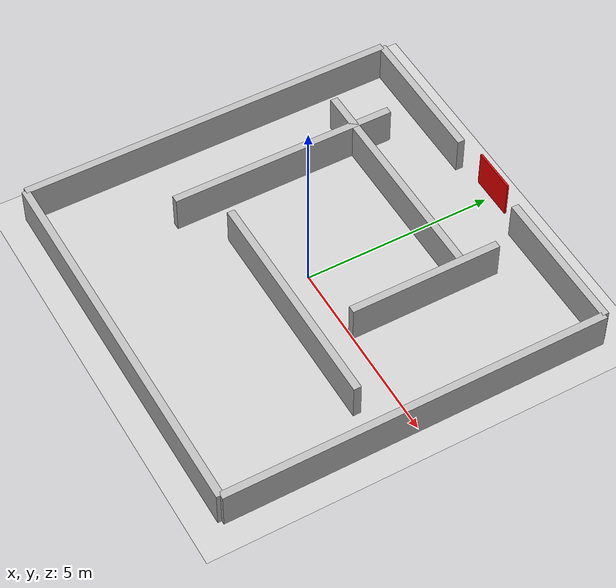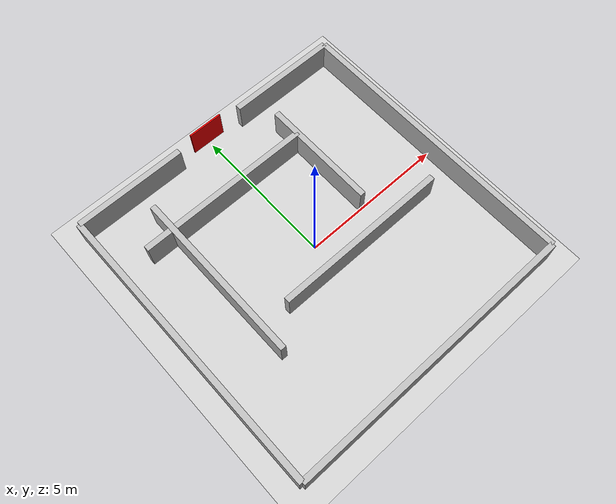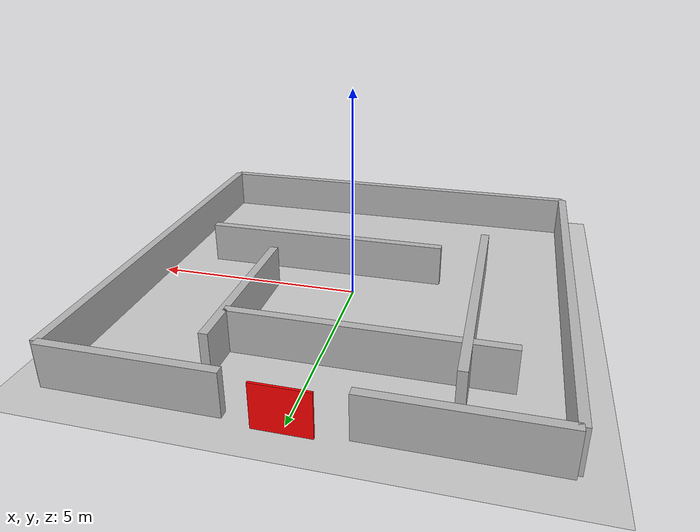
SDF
<?xml version="1.0" ?>
<sdf version="1.6">
  <world name="maze_world">

    <!-- ================== BASIC WORLD ================== -->

    <!-- Sun -->
    <include>
      <uri>model://sun</uri>
    </include>

    <!-- Ground -->
    <include>
      <uri>model://ground_plane</uri>
    </include>

    <!-- ================== OUTER BOUNDARY ================== -->
    <!-- North wall has EXIT GAP -->

    <!-- North Wall LEFT -->
    <model name="north_wall_left">
      <static>true</static>
      <pose>-3.1 5 0.5 0 0 0</pose>
      <link name="link">
        <collision name="collision">
          <geometry>
            <box><size>3.8 0.2 1</size></box>
          </geometry>
        </collision>
        <visual name="visual">
          <geometry>
            <box><size>3.8 0.2 1</size></box>
          </geometry>
        </visual>
      </link>
    </model>

    <!-- North Wall RIGHT -->
    <model name="north_wall_right">
      <static>true</static>
      <pose>3.1 5 0.5 0 0 0</pose>
      <link name="link">
        <collision name="collision">
          <geometry>
            <box><size>3.8 0.2 1</size></box>
          </geometry>
        </collision>
        <visual name="visual">
          <geometry>
            <box><size>3.8 0.2 1</size></box>
          </geometry>
        </visual>
      </link>
    </model>

    <!-- EXIT MARKER (RED VISUAL CLUE) -->
    <model name="exit_marker">
      <static>true</static>
      <pose>0 5.2 0.5 0 0 0</pose>
      <link name="link">
        <visual name="visual">
          <geometry>
            <box>
              <size>1.2 0.05 1</size>
            </box>
          </geometry>
          <material>
            <ambient>1 0 0 1</ambient>
            <diffuse>1 0 0 1</diffuse>
          </material>
        </visual>
      </link>
    </model>

    <!-- South Wall -->
    <model name="south_wall">
      <static>true</static>
      <pose>0 -5 0.5 0 0 0</pose>
      <link name="link">
        <collision name="collision">
          <geometry>
            <box><size>10 0.2 1</size></box>
          </geometry>
        </collision>
        <visual name="visual">
          <geometry>
            <box><size>10 0.2 1</size></box>
          </geometry>
        </visual>
      </link>
    </model>

    <!-- East Wall -->
    <model name="east_wall">
      <static>true</static>
      <pose>5 0 0.5 0 0 0</pose>
      <link name="link">
        <collision name="collision">
          <geometry>
            <box><size>0.2 10 1</size></box>
          </geometry>
        </collision>
        <visual name="visual">
          <geometry>
            <box><size>0.2 10 1</size></box>
          </geometry>
        </visual>
      </link>
    </model>

    <!-- West Wall -->
    <model name="west_wall">
      <static>true</static>
      <pose>-5 0 0.5 0 0 0</pose>
      <link name="link">
        <collision name="collision">
          <geometry>
            <box><size>0.2 10 1</size></box>
          </geometry>
        </collision>
        <visual name="visual">
          <geometry>
            <box><size>0.2 10 1</size></box>
          </geometry>
        </visual>
      </link>
    </model>

    <!-- ================== INTERNAL MAZE WALLS ================== -->

    <!-- Horizontal Wall 1 -->
    <model name="wall_h1">
      <static>true</static>
      <pose>-1 3 0.5 0 0 0</pose>
      <link name="link">
        <collision name="collision">
          <geometry>
            <box><size>6 0.2 1</size></box>
          </geometry>
        </collision>
        <visual name="visual">
          <geometry>
            <box><size>6 0.2 1</size></box>
          </geometry>
        </visual>
      </link>
    </model>

    <!-- Horizontal Wall 2 -->
    <model name="wall_h2">
      <static>true</static>
      <pose>1 -1 0.5 0 0 0</pose>
      <link name="link">
        <collision name="collision">
          <geometry>
            <box><size>6 0.2 1</size></box>
          </geometry>
        </collision>
        <visual name="visual">
          <geometry>
            <box><size>6 0.2 1</size></box>
          </geometry>
        </visual>
      </link>
    </model>

    <!-- Vertical Wall 1 -->
    <model name="wall_v1">
      <static>true</static>
      <pose>-3 1 0.5 0 0 0</pose>
      <link name="link">
        <collision name="collision">
          <geometry>
            <box><size>0.2 6 1</size></box>
          </geometry>
        </collision>
        <visual name="visual">
          <geometry>
            <box><size>0.2 6 1</size></box>
          </geometry>
        </visual>
      </link>
    </model>

    <!-- Vertical Wall 2 -->
    <model name="wall_v2">
      <static>true</static>
      <pose>2 2 0.5 0 0 0</pose>
      <link name="link">
        <collision name="collision">
          <geometry>
            <box><size>0.2 4 1</size></box>
          </geometry>
        </collision>
        <visual name="visual">
          <geometry>
            <box><size>0.2 4 1</size></box>
          </geometry>
        </visual>
      </link>
    </model>

  </world>
</sdf>
